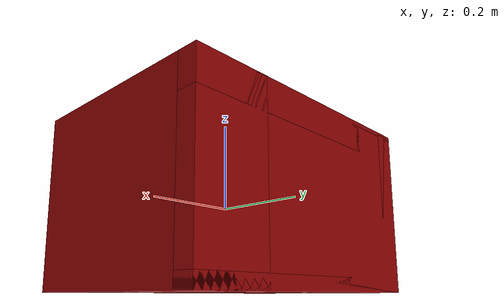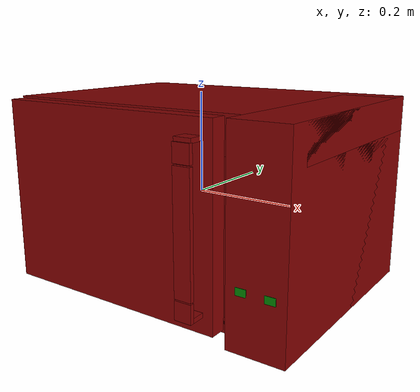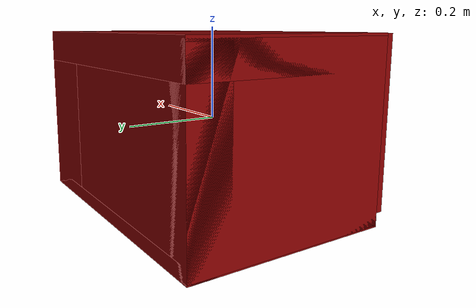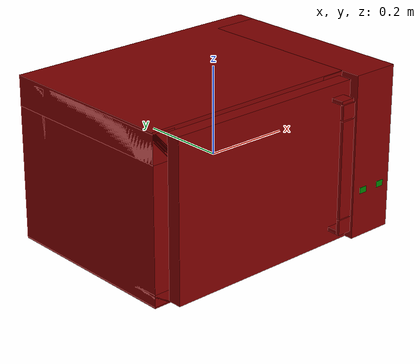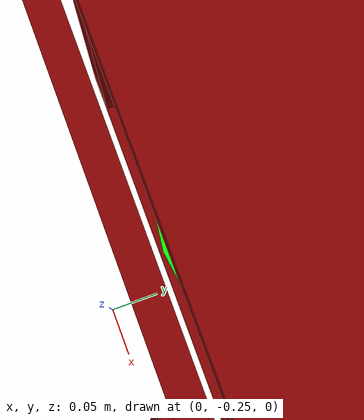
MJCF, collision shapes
<?xml version='1.0' encoding='UTF-8'?>
<mujoco model="model">
  <option timestep="0.002" gravity="0.0 0.0 -9.81"/>
  <compiler angle="radian"/>
  <asset>
    <mesh file="visuals/door.obj" name="door_vis"/>
    <mesh file="visuals/door_Clear.obj" name="door_Clear_vis"/>
    <mesh file="visuals/Body001.obj" name="Body001_vis"/>
    <mesh file="visuals/Disc001.obj" name="Disc001_vis"/>
    <texture file="visuals/T_BC001.png" name="Body001_material" type="2d"/>
    <material name="Body001_material" rgba="1 1 1 1.0" texture="Body001_material" shininess="0.2512328028678894" specular="5"/>
    <texture file="visuals/T_BC001.png" name="door_material" type="2d"/>
    <material name="door_material" rgba="1 1 1 1.0" texture="door_material" shininess="0.2512328028678894" specular="0.3103448502657381"/>
    <material name="door_Clear_material" rgba="0.04224412515759468 0.04224412515759468 0.04224412515759468 0.800000011920929" shininess="0.2512328028678894" specular="0.3103448502657381"/>
    <texture file="visuals/T_BC001.png" name="Disc001_material" type="2d"/>
    <material name="Disc001_material" rgba="1 1 1 1.0" texture="Disc001_material" shininess="0.2512328028678894" specular="5"/>
  </asset>
  <default>
    <default class="visual">
      <geom conaffinity="0" contype="0" group="1" type="mesh"/>
    </default>
    <default class="collision">
      <geom group="0" rgba="0.5 0 0 0.5"/>
    </default>
    <default class="spawn">
      <geom group="0" rgba="1 1 1 0.5" contype="0" conaffinity="0"/>
      <site group="0" rgba="1 1 1 0.5"/>
    </default>
    <default class="region">
      <geom group="1" conaffinity="0" contype="0" rgba="0 1 0 0"/>
    </default>
  </default>
  <worldbody>
    <body>
      <body name="object">
        <geom class="collision" type="box" pos="0.28804028 -0.22491677 -0.08048747" size="0.010044815950095654 0.00039716094033792615 0.006886591203510761" quat="1.0 0.0 0.0 0.0" name="start_button" rgba="0.0 0.5 0 0.5"/>
        <geom class="collision" type="box" pos="0.23524892 -0.22491677 -0.08021195" size="0.01002152357250452 0.0003947767545469105 0.006872840225696564" quat="1.0 0.0 0.0 0.0" name="stop_button" rgba="0.0 0.5 0 0.5"/>
        <geom class="collision" type="cylinder" pos="-0.05606521 -0.00605333 -0.14644285" size="0.16716837882995605 0.0010897873435169458" quat="1.0 0.0 0.0 0.0" name="tray" rgba="0 1 0 0.5"/>
        <geom mesh="Body001_vis" type="mesh" solimp="0.998 0.998 0.001" solref="0.001 1" friction="0.95 0.3 0.1" class="visual" material="Body001_material"/>
        <geom class="collision" type="box" pos="-0.28884771 0.03953064 -0.00122156" size="0.027851169928908348 0.21672092378139496 0.1852727234363556" quat="1.0 0.0 0.0 0.0"/>
        <geom class="collision" type="box" pos="0.23300782 0.03953064 -0.00079894" size="0.08369099348783493 0.21672089397907257 0.1883750557899475" quat="1.0 0.0 0.0 0.0"/>
        <geom class="collision" type="box" pos="-0.00000002 0.03953064 0.15464386" size="0.3166988492012024 0.21672092378139496 0.03453011065721512" quat="1.0 0.0 0.0 0.0"/>
        <geom class="collision" type="box" pos="-0.00000002 0.03953064 -0.17429812" size="0.3166988492012024 0.21672092378139496 0.01487585436552763" quat="1.0 0.0 0.0 0.0"/>
        <geom class="collision" type="box" pos="-0.07131857 0.21459441 -0.00479189" size="0.24538031220436096 0.041657134890556335 0.1843820959329605" quat="1.0 0.0 0.0 0.0"/>
        <geom class="collision" type="box" pos="0.26122370 -0.00591329 -0.00000000" size="0.0554751381278038 0.2178523689508438 0.18917399644851685" quat="1.0 0.0 0.0 0.0"/>
        <geom class="collision" type="box" pos="-0.27997822 -0.00556095 0.01292899" size="0.026535065844655037 0.12103907763957977 0.08569302409887314" quat="1.0 0.0 0.0 0.0"/>
        <body name="door">
          <joint axis="0.0 0.0 1.0" pos="-0.29022220 -0.20176911 0.00763022" limited="true" name="microjoint" range="-1.5707963267948966 0.0" type="hinge" damping="1" frictionloss="1" armature=".01" stiffness="0.05"/>
          <geom mesh="door_vis" type="mesh" solimp="0.998 0.998 0.001" solref="0.001 1" friction="0.95 0.3 0.1" class="visual" material="door_material"/>
          <geom class="collision" type="box" pos="-0.05552075 -0.22002309 0.00748251" size="0.20229002833366394 0.0018032199004665017 0.10940970480442047" quat="1.0 0.0 0.0 0.0"/>
          <geom class="collision" type="box" pos="-0.05510630 -0.20761232 0.00638556" size="0.2370222806930542 0.015952063724398613 0.1811884492635727" quat="1.0 0.0 0.0 0.0" name="door_main"/>
          <geom class="collision" type="box" pos="0.14527963 -0.25222316 -0.12741457" size="0.01679394580423832 0.00402682414278388 0.017611566931009293" quat="1.0 0.0 0.0 0.0"/>
          <geom class="collision" type="box" pos="0.14527960 -0.25222507 0.13459058" size="0.01679394766688347 0.004026825539767742 0.01692659966647625" quat="1.0 0.0 0.0 0.0"/>
          <geom class="collision" type="box" pos="0.14527956 -0.23600521 0.15471932" size="0.01679397001862526 0.016284829005599022 0.0041481382213532925" quat="1.0 0.0 0.0 0.0"/>
          <geom class="collision" type="box" pos="0.14558509 -0.23435683 -0.14039627" size="0.016553714871406555 0.014636514708399773 0.004379902966320515" quat="1.0 0.0 0.0 0.0"/>
          <geom class="collision" type="box" pos="0.14527962 -0.25222316 0.00366622" size="0.016794003546237946 0.004026748239994049 0.11098970472812653" quat="1.0 0.0 0.0 0.0" name="door_handle_main"/>
          <body name="door_Clear">
            <geom mesh="door_Clear_vis" type="mesh" solimp="0.998 0.998 0.001" solref="0.001 1" friction="0.95 0.3 0.1" class="visual" material="door_Clear_material"/>
            <geom class="collision" type="box" pos="-0.05552075 -0.22002309 0.00748251" size="0.20229002833366394 0.0018032199004665017 0.10940970480442047" quat="1.0 0.0 0.0 0.0"/>
          </body>
        </body>
        <body name="Disc001">
          <joint axis="0.0 0.0 1.0" pos="-0.05591222 -0.00646206 -0.15351887" limited="false" name="Disc001_joint" range="0 360" type="hinge" damping="1" frictionloss="1" armature=".01" stiffness="0.05"/>
          <geom mesh="Disc001_vis" type="mesh" solimp="0.998 0.998 0.001" solref="0.001 1" friction="0.95 0.3 0.1" class="visual" material="Disc001_material"/>
          <geom class="collision" type="cylinder" pos="-0.05556977 -0.00644016 -0.15328167" size="0.16685064136981964 0.00481948908418417" quat="1.0 0.0 0.0 0.0"/>
        </body>
        <geom class="region" name="reg_int" type="box" pos="-0.054302135 -0.002163720000000008 -0.01514596" size="0.194274445 0.16822682 0.13066676"/>
        <geom class="region" name="reg_main" type="box" pos="0.0 0.016242950000000006 0.0" size="0.31769885 0.24100859 0.190174"/>
      <geom class="region" name="reg_tray" type="cylinder" pos="-0.05606521 -0.00605333 -0.014916131328241537" size="0.16716837882995605 0.12943693132824152"/></body>
    </body>
  </worldbody>
  <actuator>
    <motor name="microjoint_actuator" joint="microjoint" gear="10"/>
    <motor name="Disc001_joint_actuator" joint="Disc001_joint" gear="10"/>
  </actuator>
</mujoco>
